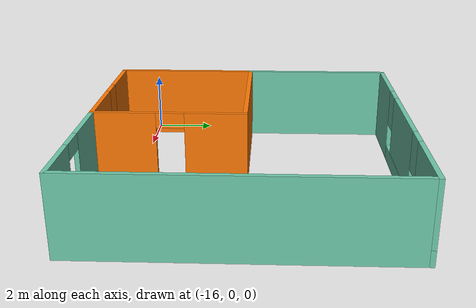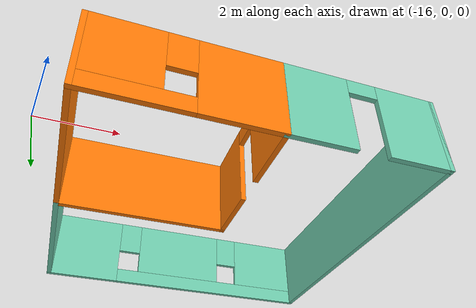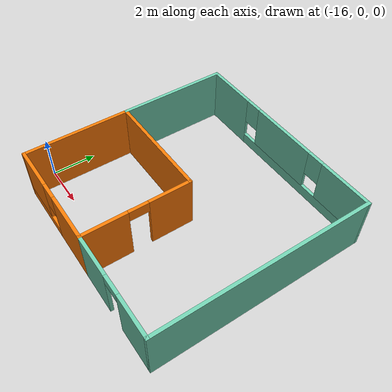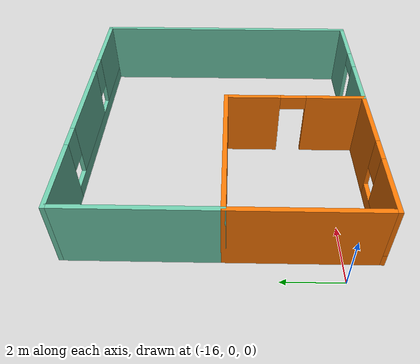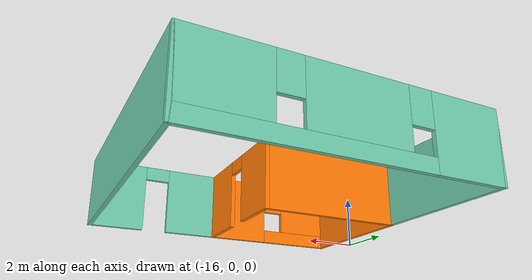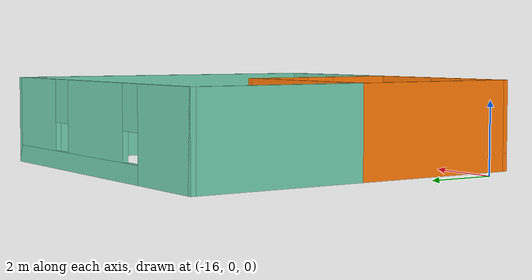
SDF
<?xml version='1.0'?>
<sdf version='1.6'>
  <model name='Building'>
    <pose frame=''>-10.365 3.735 0 0 -0 0</pose>
    <link name='Wall_0'>
      <collision name='Wall_0_Collision'>
        <geometry>
          <box>
            <size>10 0.15 2.5</size>
          </box>
        </geometry>
        <pose frame=''>0 0 1.25 0 -0 0</pose>
      </collision>
      <visual name='Wall_0_Visual'>
        <pose frame=''>0 0 1.25 0 -0 0</pose>
        <geometry>
          <box>
            <size>10 0.15 2.5</size>
          </box>
        </geometry>
        <material>
          <script>
            <uri>file://media/materials/scripts/gazebo.material</uri>
            <name>Gazebo/Grey</name>
          </script>
          <ambient>0.435294 0.796078 0.67451 1</ambient>
        </material>
      </visual>
      <pose frame=''>4.925 0 0 0 -0 1.5708</pose>
    </link>
    <link name='Wall_12'>
      <collision name='Wall_12_Collision'>
        <geometry>
          <box>
            <size>5 0.15 2.5</size>
          </box>
        </geometry>
        <pose frame=''>0 0 1.25 0 -0 0</pose>
      </collision>
      <visual name='Wall_12_Visual'>
        <pose frame=''>0 0 1.25 0 -0 0</pose>
        <geometry>
          <box>
            <size>5 0.15 2.5</size>
          </box>
        </geometry>
        <material>
          <script>
            <uri>file://media/materials/scripts/gazebo.material</uri>
            <name>Gazebo/Grey</name>
          </script>
          <ambient>0.996078 0.47451 0.0196078 1</ambient>
        </material>
      </visual>
      <pose frame=''>-4.925 -2.5 0 0 -0 1.5708</pose>
    </link>
    <link name='Wall_15'>
      <collision name='Wall_15_Collision'>
        <geometry>
          <box>
            <size>5.15 0.15 2.5</size>
          </box>
        </geometry>
        <pose frame=''>0 0 1.25 0 -0 0</pose>
      </collision>
      <visual name='Wall_15_Visual'>
        <pose frame=''>0 0 1.25 0 -0 0</pose>
        <geometry>
          <box>
            <size>5.15 0.15 2.5</size>
          </box>
        </geometry>
        <material>
          <script>
            <uri>file://media/materials/scripts/gazebo.material</uri>
            <name>Gazebo/Grey</name>
          </script>
          <ambient>0.435294 0.796078 0.67451 1</ambient>
        </material>
      </visual>
      <pose frame=''>-4.925 2.425 0 0 0 -1.5708</pose>
    </link>
    <link name='Wall_17'>
      <pose frame=''>0.175 -2.5 0 0 0 -1.5708</pose>
      <visual name='Wall_17_Visual_0'>
        <pose frame=''>-1.5019 0 1.25 0 -0 0</pose>
        <geometry>
          <box>
            <size>1.9962 0.15 2.5</size>
          </box>
        </geometry>
        <material>
          <script>
            <uri>file://media/materials/scripts/gazebo.material</uri>
            <name>Gazebo/Grey</name>
          </script>
          <ambient>0.996078 0.47451 0.0196078 1</ambient>
        </material>
      </visual>
      <collision name='Wall_17_Collision_0'>
        <geometry>
          <box>
            <size>1.9962 0.15 2.5</size>
          </box>
        </geometry>
        <pose frame=''>-1.5019 0 1.25 0 -0 0</pose>
      </collision>
      <visual name='Wall_17_Visual_1'>
        <pose frame=''>1.4481 0 1.25 0 -0 0</pose>
        <geometry>
          <box>
            <size>2.1038 0.15 2.5</size>
          </box>
        </geometry>
        <material>
          <script>
            <uri>file://media/materials/scripts/gazebo.material</uri>
            <name>Gazebo/Grey</name>
          </script>
          <ambient>0.996078 0.47451 0.0196078 1</ambient>
        </material>
      </visual>
      <collision name='Wall_17_Collision_1'>
        <geometry>
          <box>
            <size>2.1038 0.15 2.5</size>
          </box>
        </geometry>
        <pose frame=''>1.4481 0 1.25 0 -0 0</pose>
      </collision>
      <visual name='Wall_17_Visual_2'>
        <pose frame=''>-0.053797 0 2.25 0 -0 0</pose>
        <geometry>
          <box>
            <size>0.9 0.15 0.5</size>
          </box>
        </geometry>
        <material>
          <script>
            <uri>file://media/materials/scripts/gazebo.material</uri>
            <name>Gazebo/Grey</name>
          </script>
          <ambient>0.996078 0.47451 0.0196078 1</ambient>
        </material>
      </visual>
      <collision name='Wall_17_Collision_2'>
        <geometry>
          <box>
            <size>0.9 0.15 0.5</size>
          </box>
        </geometry>
        <pose frame=''>-0.053797 0 2.25 0 -0 0</pose>
      </collision>
    </link>
    <link name='Wall_18'>
      <pose frame=''>-2.375 -4.925 0 0 -0 3.14159</pose>
      <visual name='Wall_18_Visual_0'>
        <pose frame=''>-1.45794 0 1.25 0 -0 0</pose>
        <geometry>
          <box>
            <size>2.33413 0.15 2.5</size>
          </box>
        </geometry>
        <material>
          <script>
            <uri>file://media/materials/scripts/gazebo.material</uri>
            <name>Gazebo/Grey</name>
          </script>
          <ambient>0.996078 0.47451 0.0196078 1</ambient>
        </material>
      </visual>
      <collision name='Wall_18_Collision_0'>
        <geometry>
          <box>
            <size>2.33413 0.15 2.5</size>
          </box>
        </geometry>
        <pose frame=''>-1.45794 0 1.25 0 -0 0</pose>
      </collision>
      <visual name='Wall_18_Visual_1'>
        <pose frame=''>1.16706 0 0.25 0 -0 0</pose>
        <geometry>
          <box>
            <size>2.91587 0.15 0.5</size>
          </box>
        </geometry>
        <material>
          <script>
            <uri>file://media/materials/scripts/gazebo.material</uri>
            <name>Gazebo/Grey</name>
          </script>
          <ambient>0.996078 0.47451 0.0196078 1</ambient>
        </material>
      </visual>
      <collision name='Wall_18_Collision_1'>
        <geometry>
          <box>
            <size>2.91587 0.15 0.5</size>
          </box>
        </geometry>
        <pose frame=''>1.16706 0 0.25 0 -0 0</pose>
      </collision>
      <visual name='Wall_18_Visual_2'>
        <pose frame=''>1.56706 0 1.5 0 -0 0</pose>
        <geometry>
          <box>
            <size>2.11587 0.15 2</size>
          </box>
        </geometry>
        <material>
          <script>
            <uri>file://media/materials/scripts/gazebo.material</uri>
            <name>Gazebo/Grey</name>
          </script>
          <ambient>0.996078 0.47451 0.0196078 1</ambient>
        </material>
      </visual>
      <collision name='Wall_18_Collision_2'>
        <geometry>
          <box>
            <size>2.11587 0.15 2</size>
          </box>
        </geometry>
        <pose frame=''>1.56706 0 1.5 0 -0 0</pose>
      </collision>
      <visual name='Wall_18_Visual_3'>
        <pose frame=''>0.109129 0 1.9 0 -0 0</pose>
        <geometry>
          <box>
            <size>0.8 0.15 1.2</size>
          </box>
        </geometry>
        <material>
          <script>
            <uri>file://media/materials/scripts/gazebo.material</uri>
            <name>Gazebo/Grey</name>
          </script>
          <ambient>0.996078 0.47451 0.0196078 1</ambient>
        </material>
      </visual>
      <collision name='Wall_18_Collision_3'>
        <geometry>
          <box>
            <size>0.8 0.15 1.2</size>
          </box>
        </geometry>
        <pose frame=''>0.109129 0 1.9 0 -0 0</pose>
      </collision>
    </link>
    <link name='Wall_20'>
      <pose frame=''>2.55 -4.925 0 0 -0 0</pose>
      <visual name='Wall_20_Visual_0'>
        <pose frame=''>-1.43275 0 1.25 0 -0 0</pose>
        <geometry>
          <box>
            <size>2.03449 0.15 2.5</size>
          </box>
        </geometry>
        <material>
          <script>
            <uri>file://media/materials/scripts/gazebo.material</uri>
            <name>Gazebo/Grey</name>
          </script>
          <ambient>0.435294 0.796078 0.67451 1</ambient>
        </material>
      </visual>
      <collision name='Wall_20_Collision_0'>
        <geometry>
          <box>
            <size>2.03449 0.15 2.5</size>
          </box>
        </geometry>
        <pose frame=''>-1.43275 0 1.25 0 -0 0</pose>
      </collision>
      <visual name='Wall_20_Visual_1'>
        <pose frame=''>1.46725 0 1.25 0 -0 0</pose>
        <geometry>
          <box>
            <size>1.96551 0.15 2.5</size>
          </box>
        </geometry>
        <material>
          <script>
            <uri>file://media/materials/scripts/gazebo.material</uri>
            <name>Gazebo/Grey</name>
          </script>
          <ambient>0.435294 0.796078 0.67451 1</ambient>
        </material>
      </visual>
      <collision name='Wall_20_Collision_1'>
        <geometry>
          <box>
            <size>1.96551 0.15 2.5</size>
          </box>
        </geometry>
        <pose frame=''>1.46725 0 1.25 0 -0 0</pose>
      </collision>
      <visual name='Wall_20_Visual_2'>
        <pose frame=''>0.034491 0 2.25 0 -0 0</pose>
        <geometry>
          <box>
            <size>0.9 0.15 0.5</size>
          </box>
        </geometry>
        <material>
          <script>
            <uri>file://media/materials/scripts/gazebo.material</uri>
            <name>Gazebo/Grey</name>
          </script>
          <ambient>0.435294 0.796078 0.67451 1</ambient>
        </material>
      </visual>
      <collision name='Wall_20_Collision_2'>
        <geometry>
          <box>
            <size>0.9 0.15 0.5</size>
          </box>
        </geometry>
        <pose frame=''>0.034491 0 2.25 0 -0 0</pose>
      </collision>
    </link>
    <link name='Wall_25'>
      <collision name='Wall_25_Collision'>
        <geometry>
          <box>
            <size>5.25 0.15 2.5</size>
          </box>
        </geometry>
        <pose frame=''>0 0 1.25 0 -0 0</pose>
      </collision>
      <visual name='Wall_25_Visual'>
        <pose frame=''>0 0 1.25 0 -0 0</pose>
        <geometry>
          <box>
            <size>5.25 0.15 2.5</size>
          </box>
        </geometry>
        <material>
          <script>
            <uri>file://media/materials/scripts/gazebo.material</uri>
            <name>Gazebo/Grey</name>
          </script>
          <ambient>0.996078 0.47451 0.0196078 1</ambient>
        </material>
      </visual>
      <pose frame=''>-2.375 -0.075 0 0 -0 3.14159</pose>
    </link>
    <link name='Wall_32'>
      <pose frame=''>0 4.925 0 0 -0 0</pose>
      <visual name='Wall_32_Visual_0'>
        <pose frame=''>-3.72081 0 1.25 0 -0 0</pose>
        <geometry>
          <box>
            <size>2.55837 0.15 2.5</size>
          </box>
        </geometry>
        <material>
          <script>
            <uri>file://media/materials/scripts/gazebo.material</uri>
            <name>Gazebo/Grey</name>
          </script>
          <ambient>0.435294 0.796078 0.67451 1</ambient>
        </material>
      </visual>
      <collision name='Wall_32_Collision_0'>
        <geometry>
          <box>
            <size>2.55837 0.15 2.5</size>
          </box>
        </geometry>
        <pose frame=''>-3.72081 0 1.25 0 -0 0</pose>
      </collision>
      <visual name='Wall_32_Visual_1'>
        <pose frame=''>1.27919 0 0.25 0 -0 0</pose>
        <geometry>
          <box>
            <size>7.44163 0.15 0.5</size>
          </box>
        </geometry>
        <material>
          <script>
            <uri>file://media/materials/scripts/gazebo.material</uri>
            <name>Gazebo/Grey</name>
          </script>
          <ambient>0.435294 0.796078 0.67451 1</ambient>
        </material>
      </visual>
      <collision name='Wall_32_Collision_1'>
        <geometry>
          <box>
            <size>7.44163 0.15 0.5</size>
          </box>
        </geometry>
        <pose frame=''>1.27919 0 0.25 0 -0 0</pose>
      </collision>
      <visual name='Wall_32_Visual_2'>
        <pose frame=''>-0.01016 0 1.5 0 -0 0</pose>
        <geometry>
          <box>
            <size>3.26294 0.15 2</size>
          </box>
        </geometry>
        <material>
          <script>
            <uri>file://media/materials/scripts/gazebo.material</uri>
            <name>Gazebo/Grey</name>
          </script>
          <ambient>0.435294 0.796078 0.67451 1</ambient>
        </material>
      </visual>
      <collision name='Wall_32_Collision_2'>
        <geometry>
          <box>
            <size>3.26294 0.15 2</size>
          </box>
        </geometry>
        <pose frame=''>-0.01016 0 1.5 0 -0 0</pose>
      </collision>
      <visual name='Wall_32_Visual_3'>
        <pose frame=''>3.71066 0 1.5 0 -0 0</pose>
        <geometry>
          <box>
            <size>2.57869 0.15 2</size>
          </box>
        </geometry>
        <material>
          <script>
            <uri>file://media/materials/scripts/gazebo.material</uri>
            <name>Gazebo/Grey</name>
          </script>
          <ambient>0.435294 0.796078 0.67451 1</ambient>
        </material>
      </visual>
      <collision name='Wall_32_Collision_3'>
        <geometry>
          <box>
            <size>2.57869 0.15 2</size>
          </box>
        </geometry>
        <pose frame=''>3.71066 0 1.5 0 -0 0</pose>
      </collision>
      <visual name='Wall_32_Visual_4'>
        <pose frame=''>-2.04163 0 1.9 0 -0 0</pose>
        <geometry>
          <box>
            <size>0.8 0.15 1.2</size>
          </box>
        </geometry>
        <material>
          <script>
            <uri>file://media/materials/scripts/gazebo.material</uri>
            <name>Gazebo/Grey</name>
          </script>
          <ambient>0.435294 0.796078 0.67451 1</ambient>
        </material>
      </visual>
      <collision name='Wall_32_Collision_4'>
        <geometry>
          <box>
            <size>0.8 0.15 1.2</size>
          </box>
        </geometry>
        <pose frame=''>-2.04163 0 1.9 0 -0 0</pose>
      </collision>
      <visual name='Wall_32_Visual_5'>
        <pose frame=''>2.02131 0 1.9 0 -0 0</pose>
        <geometry>
          <box>
            <size>0.8 0.15 1.2</size>
          </box>
        </geometry>
        <material>
          <script>
            <uri>file://media/materials/scripts/gazebo.material</uri>
            <name>Gazebo/Grey</name>
          </script>
          <ambient>0.435294 0.796078 0.67451 1</ambient>
        </material>
      </visual>
      <collision name='Wall_32_Collision_5'>
        <geometry>
          <box>
            <size>0.8 0.15 1.2</size>
          </box>
        </geometry>
        <pose frame=''>2.02131 0 1.9 0 -0 0</pose>
      </collision>
    </link>
    <static>1</static>
  </model>
</sdf>
